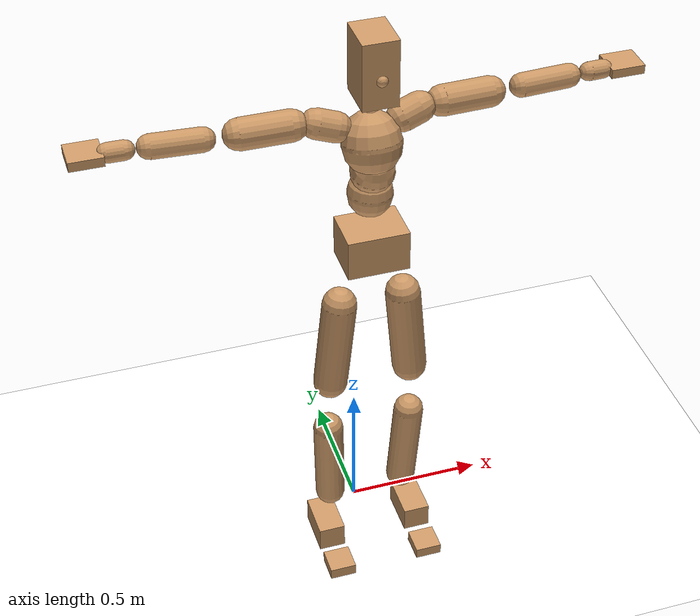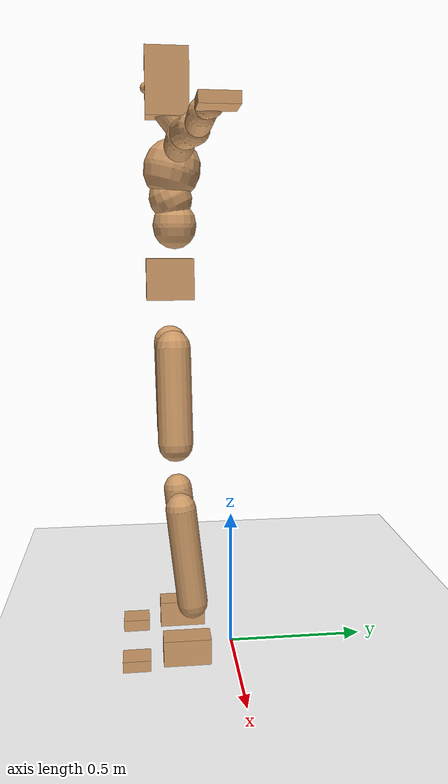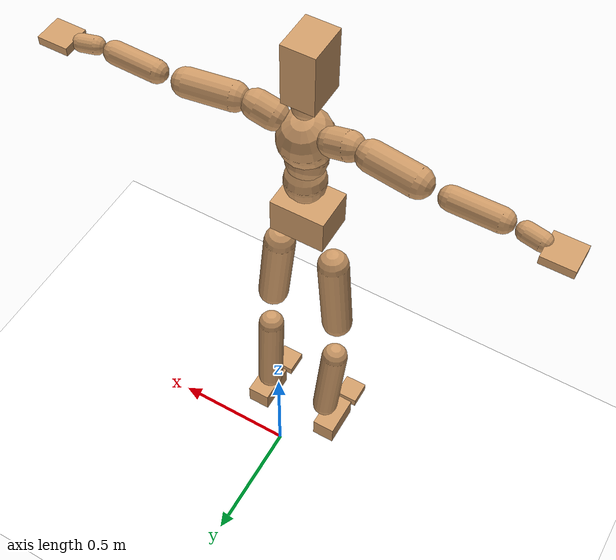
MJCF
<mujoco model="humanoid">
  <option integrator="implicitfast" />

  <visual>
    <global offwidth="1280" offheight="960" />
    <headlight active="1" ambient="0.34 0.34 0.34" diffuse="0.5 0.5 0.5" />
  </visual>

  <default>
    <joint damping="2" stiffness="2" armature="0.01" limited="true" solimplimit="0 .99 .01" />
    <geom condim="1" friction="0.7 0.005 0.0001" solimp=".99 .99 .003" solref="0.015 1" margin="0.001" rgba="0.8 0.6 .4 1" />
    <default class="smplcontact">
      <geom condim="3" friction="1. 0.005 0.0001" solref="0.015 1" solimp="0.98 0.98 0.001" priority="1" />
    </default>
    <default class="stiff_medium">
      <joint stiffness="10" />
    </default>
    <default class="stiff_medium_higher">
      <joint stiffness="50" />
    </default>
    <default class="stiff_high">
      <joint stiffness="100" />
    </default>
  </default>

  <asset>
    <texture type="skybox" builtin="gradient" rgb1="0.99 0.99 0.99" rgb2="0.608 0.828 0.892" width="100" />
    <texture builtin="flat" height="1278" mark="cross" markrgb="1 1 1" name="texgeom" random="0.01" rgb1="0.8 0.6 0.4" rgb2="0.8 0.6 0.4" type="cube" width="127" />
    <texture name="texplane" type="2d" builtin="checker" markrgb="1 1 1" rgb1="0.756 0.772 0.76" rgb2="0.6 0.6 0.6" width="100" height="100" />
    <material name="MatPlane" reflectance="0.5" texture="texplane" texrepeat="1 1" texuniform="true" />
    <material name="geom" texture="texgeom" texuniform="true" />
  </asset>

  <worldbody>
    <light name="tracking_light" pos="0 0 7" dir="0 0 -1" directional="true" cutoff="100" exponent="1" diffuse="1 1 1" specular="0.1 0.1 0.1" mode="trackcom" />
    <camera name="back" pos="0 3 2.4" xyaxes="-1 0 0 0 -1 2" mode="trackcom" />
    <camera name="side" pos="-3 0 2.4" xyaxes="0 -1 0 1 0 2" mode="trackcom" />
    <camera name="front_side" pos="-2.8 -2.8 0.8" xyaxes="0.5 -0.5 0 0.1 0.1 1" mode="trackcom" />
    <geom condim="3" name="floor" pos="0 0 0" rgba="1 1 1 1" size="100 100 .2" type="plane" material="MatPlane" />
    <body name="Pelvis" pos="-0.0018 -0.2233 1.39425" euler="90 0 0">
      <site name="Pelvis" size="0.01" />
      <freejoint name="Pelvis" />
      <geom type="box" pos="-0.0000 -0.0121 -0.0055" size="0.1069 0.0722 0.083" quat="1.0000 0.0000 0.0000 0.0000" density="3165.830099" name="Pelvis" />
      <body name="L_Hip" pos="0.10425 -0.1371 -0.0102">
        <joint name="L_Hip_x" type="hinge" pos="0 0 0" axis="1 0 0" stiffness="20.010395760869564" range="-160.0 22.92" class="stiff_medium" damping="35.828196311411354" armature="0.02851095036953482"/>
        <joint name="L_Hip_y" type="hinge" pos="0 0 0" axis="0 1 0" stiffness="19.865808913043477" range="-70.0 70.0" class="stiff_medium" damping="19.51665179855629" armature="0.01917363139318226"/>
        <joint name="L_Hip_z" type="hinge" pos="0 0 0" axis="0 0 1" stiffness="19.889777717391304" range="-28.65 90.0" class="stiff_medium" damping="23.81898353912802" armature="0.028524400066129187"/>
        <geom type="capsule" density="2040.816327" fromto="0.01035 -0.1125 -0.00135 0.0411 -0.4503 -0.0054" size="0.0615" name="L_Hip" />
        <body name="L_Knee" pos="0.05145 -0.5628 -0.00675">
          <joint name="L_Knee_x" type="hinge" pos="0 0 0" axis="1 0 0" range="-5.16 171.89" damping="17.97370958314121" armature="0.026396428561925697" stiffness="3.824549543478261"/>
          <joint name="L_Knee_y" type="hinge" pos="0 0 0" axis="0 1 0" range="-4.58 6.88" damping="14.941329779624818" armature="0.017722990590982556" stiffness="3.9363301589371975"/>
          <joint name="L_Knee_z" type="hinge" pos="0 0 0" axis="0 0 1" range="-6.88 4.58" damping="17.919426580121158" armature="0.026455159530536426" stiffness="3.7930437608695655"/>
          <geom type="capsule" density="1234.567901" fromto="-0.00405 -0.1194 -0.01305 -0.01635 -0.4776 -0.0525" size="0.0541" name="L_Knee" />
          <body name="L_Ankle" pos="-0.0204 -0.597 -0.06555">
            <joint name="L_Ankle_x" type="hinge" pos="0 0 0" axis="1 0 0" range="-45.84 45.84" class="stiff_medium" damping="9.91951079885483" armature="0.01822161009048104" stiffness="15.0"/>
            <joint name="L_Ankle_y" type="hinge" pos="0 0 0" axis="0 1 0" range="-74.48 22.92" class="stiff_medium" damping="4.917952818000753" armature="0.017915748088949295" stiffness="15.0"/>
            <joint name="L_Ankle_z" type="hinge" pos="0 0 0" axis="0 0 1" range="-4.58 4.58" class="stiff_medium" damping="9.26996898132559" armature="0.015913393502729366" stiffness="15.0"/>
            <geom type="box" pos="0.03495 -0.03585 0.0363" size="0.0483 0.0464 0.085" quat="1.0000 0.0000 0.0000 0.0000" density="449.071558" name="L_Ankle" class="smplcontact" />
            <body name="L_Toe" pos="0.0396 -0.0837 0.17895">
              <joint name="L_Toe_x" type="hinge" pos="0 0 0" axis="1 0 0" range="-91.67 22.92" armature="0.014752348892847239" damping="2.97513181820711" stiffness="3.0"/>
              <joint name="L_Toe_y" type="hinge" pos="0 0 0" axis="0 1 0" range="-4.58 4.58" armature="0.013348413454862205" damping="2.8300261611718933" stiffness="3.0"/>
              <joint name="L_Toe_z" type="hinge" pos="0 0 0" axis="0 0 1" range="-4.58 4.58" armature="0.010509731565732285" damping="2.511142954799541" stiffness="3.0"/>
              <geom type="box" pos="-0.0045 0.00825 0.0372" size="0.0478 0.02 0.0496" quat="1.0000 0.0000 0.0000 0.0000" density="423.206892" name="L_Toe" class="smplcontact" />
            </body>
          </body>
        </body>
      </body>
      <body name="R_Hip" pos="-0.10155 -0.13575 -0.00645">
        <joint name="R_Hip_x" type="hinge" pos="0 0 0" axis="1 0 0" stiffness="20.010395760869564" range="-160.0 22.92" class="stiff_medium" damping="35.828196311411354" armature="0.02851095036953482"/>
        <joint name="R_Hip_y" type="hinge" pos="0 0 0" axis="0 1 0" stiffness="19.865808913043477" range="-70.0 70.0" class="stiff_medium" damping="19.51665179855629" armature="0.01917363139318226"/>
        <joint name="R_Hip_z" type="hinge" pos="0 0 0" axis="0 0 1" stiffness="19.889777717391304" range="-90.0 28.65" class="stiff_medium" damping="23.81898353912802" armature="0.028524400066129187"/>
        <geom type="capsule" density="2040.816327" fromto="-0.01155 -0.11475 -0.0027 -0.0459 -0.45915 -0.01065" size="0.0606" name="R_Hip" />
        <body name="R_Knee" pos="-0.05745 -0.5739 -0.01335">
          <joint name="R_Knee_x" type="hinge" pos="0 0 0" axis="1 0 0" range="-5.16 171.89" damping="17.97370958314121" armature="0.026396428561925697" stiffness="3.824549543478261"/>
          <joint name="R_Knee_y" type="hinge" pos="0 0 0" axis="0 1 0" range="-6.88 4.58" damping="14.941329779624818" armature="0.017722990590982556" stiffness="3.9363301589371975"/>
          <joint name="R_Knee_z" type="hinge" pos="0 0 0" axis="0 0 1" range="-4.58 6.88" damping="17.919426580121158" armature="0.026455159530536426" stiffness="3.7930437608695655"/>
          <geom type="capsule" density="1234.567901" fromto="0.0048 -0.11955 -0.01275 0.0189 -0.47805 -0.0507" size="0.0541" name="R_Knee" />
          <body name="R_Ankle" pos="0.0237 -0.5976 -0.06345">
            <joint name="R_Ankle_x" type="hinge" pos="0 0 0" axis="1 0 0" range="-45.84 45.84" class="stiff_medium" damping="9.91951079885483" armature="0.01822161009048104" stiffness="15.0"/>
            <joint name="R_Ankle_y" type="hinge" pos="0 0 0" axis="0 1 0" range="-22.92 74.48" class="stiff_medium" damping="4.917952818000753" armature="0.017915748088949295" stiffness="15.0"/>
            <joint name="R_Ankle_z" type="hinge" pos="0 0 0" axis="0 0 1" range="-4.58 4.58" class="stiff_medium" damping="9.26996898132559" armature="0.015913393502729366" stiffness="15.0"/>
            <geom type="box" pos="-0.0318 -0.0261 0.0384" size="0.0483 0.0478 0.0865" quat="1.0000 0.0000 0.0000 0.0000" density="434.700981" name="R_Ankle" class="smplcontact" />
            <body name="R_Toe" pos="-0.0381 -0.07215 0.18495">
              <joint name="R_Toe_x" type="hinge" pos="0 0 0" axis="1 0 0" range="-91.67 22.92" armature="0.014752348892847239" damping="2.97513181820711" stiffness="3.0"/>
              <joint name="R_Toe_y" type="hinge" pos="0 0 0" axis="0 1 0" range="-4.58 4.58" armature="0.013348413454862205" damping="2.8300261611718933" stiffness="3.0"/>
              <joint name="R_Toe_z" type="hinge" pos="0 0 0" axis="0 0 1" range="-4.58 4.58" armature="0.010509731565732285" damping="2.511142954799541" stiffness="3.0"/>
              <geom type="box" pos="0.0063 0.00675 0.03405" size="0.0479 0.0216 0.0493" quat="1.0000 0.0000 0.0000 0.0000" density="407.384095" name="R_Toe" class="smplcontact" />
            </body>
          </body>
        </body>
      </body>
      <body name="Torso" pos="-0.0025 0.109 -0.0267">
        <joint name="Torso_x" type="hinge" pos="0 0 0" axis="1 0 0" range="-25.78 57.3" class="stiff_medium" damping="15.609562132888074" armature="0.01047626555893536" stiffness="10.336950217391305"/>
        <joint name="Torso_y" type="hinge" pos="0 0 0" axis="0 1 0" range="-57.3 57.3" class="stiff_high" damping="22.839756117574158" armature="0.012668353656497757" stiffness="102.94440652173913"/>
        <joint name="Torso_z" type="hinge" pos="0 0 0" axis="0 0 1" range="-34.38 34.38" class="stiff_high" damping="21.447707844805652" armature="0.011223378132891126" stiffness="102.46562272727273"/>
        <geom type="capsule" density="2040.816327" fromto="0.0025 0.0608 0.0005 0.003 0.0743 0.0006" size="0.0769" name="Torso" />
        <body name="Spine" pos="0.0055 0.1352 0.0011">
          <joint name="Spine_x" type="hinge" pos="0 0 0" axis="1 0 0" stiffness="10.396827173913044" range="-25.78 57.3" class="stiff_medium" damping="15.731663630322824" armature="0.01057951992630101"/>
          <joint name="Spine_y" type="hinge" pos="0 0 0" axis="0 1 0" stiffness="10.39561239130435" range="-57.3 57.3" class="stiff_high" damping="9.187391193291853" armature="0.012686866367473135"/>
          <joint name="Spine_z" type="hinge" pos="0 0 0" axis="0 0 1" stiffness="20.922546956521742" range="-34.38 34.38" class="stiff_high" damping="13.30232076306365" armature="0.011746481097584329"/>
          <geom type="capsule" density="2040.816327" fromto="0.0007 0.0238 0.0114 0.0008 0.0291 0.014" size="0.0755" name="Spine" />
          <body name="Chest" pos="0.0015 0.0529 0.0254">
            <joint name="Chest_x" type="hinge" pos="0 0 0" axis="1 0 0" stiffness="10.56825260869565" range="-25.78 57.3" class="stiff_medium" damping="15.90734322943941" armature="0.01064166541426727"/>
            <joint name="Chest_y" type="hinge" pos="0 0 0" axis="0 1 0" stiffness="11.12741488888889" range="-57.3 57.3" class="stiff_high" damping="9.506741501952316" armature="0.012690803368218227"/>
            <joint name="Chest_z" type="hinge" pos="0 0 0" axis="0 0 1" stiffness="20.978293478260873" range="-34.38 34.38" class="stiff_high" damping="13.450047662421923" armature="0.011976915720374792"/>
            <geom type="capsule" density="2040.816327" fromto="-0.0009 0.0682 -0.0173 -0.001 0.0833 -0.0212" size="0.1002" name="Chest" />
            <body name="Neck" pos="-0.0028 0.2139 -0.0429">
              <joint name="Neck_x" type="hinge" pos="0 0 0" axis="1 0 0" range="-28.65 57.3" class="stiff_medium_higher" damping="9.999999999999998" armature="0.009999999999999995" stiffness="50.0"/>
              <joint name="Neck_y" type="hinge" pos="0 0 0" axis="0 1 0" range="-40.11 40.11" class="stiff_medium_higher" damping="10.0" armature="0.01" stiffness="50.0"/>
              <joint name="Neck_z" type="hinge" pos="0 0 0" axis="0 0 1" range="-40.11 40.11" class="stiff_medium_higher" damping="9.999999999999995" armature="0.00999999999999999" stiffness="50.0"/>
              <geom type="capsule" density="1000" fromto="0.001 0.013 0.0103 0.0041 0.052 0.0411" size="0.0436" name="Neck" />
              <body name="Head" pos="0.0052 0.065 0.0513">
                <joint name="Head_x" type="hinge" pos="0 0 0" axis="1 0 0" range="-28.65 57.3" class="stiff_medium_higher" damping="2.0000000000000018" armature="0.010000000000000018" stiffness="50.0"/>
                <joint name="Head_y" type="hinge" pos="0 0 0" axis="0 1 0" range="-40.11 40.11" class="stiff_medium_higher" damping="1.9999999999999998" armature="0.009999999999999998" stiffness="50.0"/>
                <joint name="Head_z" type="hinge" pos="0 0 0" axis="0 0 1" range="-40.11 40.11" class="stiff_medium_higher" damping="1.9999999999999971" armature="0.00999999999999997" stiffness="50.0"/>
                <geom type="box" pos="-0.0042 0.0876 -0.0116" size="0.0606 0.1154 0.076" quat="1.0000 0.0000 0.0000 0.0000" density="1018.069894" name="Head" />
                <geom type="capsule" name="nose" size="0.02 0.01" pos="0 0.07 0.05" quat="1 0 0 0" mass="0" contype="0" conaffinity="0" />
              </body>
            </body>
            <body name="L_Thorax" pos="0.08668 0.13387 -0.03751">
              <joint name="L_Thorax_x" type="hinge" pos="0 0 0" axis="1 0 0" range="-10.89 4.58" class="stiff_medium_higher" damping="23.482950613623295" armature="0.011814903262346896" stiffness="58.342518478260864"/>
              <joint name="L_Thorax_y" type="hinge" pos="0 0 0" axis="0 1 0" range="-28.65 17.19" class="stiff_medium_higher" damping="24.43569848553297" armature="0.012759387174304944" stiffness="58.49647717391304"/>
              <joint name="L_Thorax_z" type="hinge" pos="0 0 0" axis="0 0 1" range="-31.51 40.11" class="stiff_medium_higher" damping="24.43606016093474" armature="0.012760243243334085" stiffness="58.49428423913044"/>
              <geom type="capsule" density="1000" fromto="0.02002 0.00671 -0.00198 0.08008 0.02684 -0.00781" size="0.0521" name="L_Thorax" />
              <body name="L_Shoulder" pos="0.1001 0.03355 -0.00979">
                <joint name="L_Shoulder_x" type="hinge" pos="0 0 0" axis="1 0 0" range="-97.4 97.4" class="stiff_medium" damping="6.926446117549144" armature="0.01143614113174797" stiffness="11.653031304347827"/>
                <joint name="L_Shoulder_y" type="hinge" pos="0 0 0" axis="0 1 0" range="-108.86 80.21" class="stiff_medium" damping="7.315768996607566" armature="0.012722359703116888" stiffness="11.685567173913045"/>
                <joint name="L_Shoulder_z" type="hinge" pos="0 0 0" axis="0 0 1" range="-97.4 85.94" class="stiff_medium" damping="7.3163122140641335" armature="0.012723435702067621" stiffness="11.686314239130432"/>
                <geom type="capsule" density="1000" fromto="0.05709 -0.00286 -0.00605 0.22847 -0.01122 -0.0242" size="0.0517" name="L_Shoulder" />
                <body name="L_Elbow" pos="0.28556 -0.01408 -0.03025">
                  <joint name="L_Elbow_x" type="hinge" pos="0 0 0" axis="1 0 0" range="-17.19 4.58" damping="5.601469778833565" armature="0.010847020977712672" stiffness="2.314107347826087"/>
                  <joint name="L_Elbow_y" type="hinge" pos="0 0 0" axis="0 1 0" range="-180.0 17.19" damping="6.0237732190835915" armature="0.012542680731684373" stiffness="2.3143916086956517"/>
                  <joint name="L_Elbow_z" type="hinge" pos="0 0 0" axis="0 0 1" range="-100.84 4.58" damping="6.024430570097211" armature="0.012548321640758909" stiffness="2.3138561304347824"/>
                  <geom type="capsule" density="1000" fromto="0.05478 0.00198 -0.00022 0.21934 0.00792 -0.00099" size="0.0405" name="L_Elbow" />
                  <body name="L_Wrist" pos="0.27412 0.0099 -0.00132">
                    <joint name="L_Wrist_x" type="hinge" pos="0 0 0" axis="1 0 0" range="-180.0 22.92" armature="0.010707540477697577" damping="2.189843893132341" stiffness="2.2392706739130435"/>
                    <joint name="L_Wrist_y" type="hinge" pos="0 0 0" axis="0 1 0" range="-17.19 17.19" armature="0.011962634992803456" damping="2.318024362113696" stiffness="2.245841717391304"/>
                    <joint name="L_Wrist_z" type="hinge" pos="0 0 0" axis="0 0 1" range="-22.92 22.92" armature="0.012031856829646154" damping="2.323401667429803" stiffness="2.243292695652174"/>
                    <geom type="capsule" density="1000" fromto="0.01848 -0.00176 -0.0033 0.07392 -0.00715 -0.0132" size="0.0318" name="L_Wrist" class="smplcontact" />
                    <body name="L_Hand" pos="0.0924 -0.00902 -0.01639">
                      <joint name="L_Hand_x" type="hinge" pos="0 0 0" axis="1 0 0" range="-17.19 17.19" armature="0.010091488937092897" damping="2.1071912899214618" stiffness="2.2"/>
                      <joint name="L_Hand_y" type="hinge" pos="0 0 0" axis="0 1 0" range="-51.57 51.57" armature="0.011106432471592325" damping="2.210617625800677" stiffness="2.2"/>
                      <joint name="L_Hand_z" type="hinge" pos="0 0 0" axis="0 0 1" range="-91.67 91.67" armature="0.011376979537969319" damping="2.2373803871283267" stiffness="2.2"/>
                      <geom type="box" pos="0.05423 0.0011 -0.00638" size="0.0585 0.0158 0.0538" quat="1.0000 0.0000 0.0000 0.0000" density="400.552564" name="L_Hand" class="smplcontact" />
                    </body>
                  </body>
                </body>
              </body>
            </body>
            <body name="R_Thorax" pos="-0.08998 0.13068 -0.04246">
              <joint name="R_Thorax_x" type="hinge" pos="0 0 0" axis="1 0 0" range="-10.89 4.58" class="stiff_medium_higher" damping="23.482950613623295" armature="0.011814903262346896" stiffness="58.342518478260864"/>
              <joint name="R_Thorax_y" type="hinge" pos="0 0 0" axis="0 1 0" range="-17.19 28.65" class="stiff_medium_higher" damping="24.43569848553297" armature="0.012759387174304944" stiffness="58.49647717391304"/>
              <joint name="R_Thorax_z" type="hinge" pos="0 0 0" axis="0 0 1" range="-40.11 31.51" class="stiff_medium_higher" damping="24.43606016093474" armature="0.012760243243334085" stiffness="58.49428423913044"/>
              <geom type="capsule" density="1000" fromto="-0.02112 0.00715 -0.00198 -0.08448 0.0286 -0.00803" size="0.0511" name="R_Thorax" />
              <body name="R_Shoulder" pos="-0.1056 0.03586 -0.01001">
                <joint name="R_Shoulder_x" type="hinge" pos="0 0 0" axis="1 0 0" range="-97.4 97.4" class="stiff_medium" damping="6.926446117549144" armature="0.01143614113174797" stiffness="11.653031304347827"/>
                <joint name="R_Shoulder_y" type="hinge" pos="0 0 0" axis="0 1 0" range="-80.21 108.86" class="stiff_medium" damping="7.315768996607566" armature="0.012722359703116888" stiffness="11.685567173913045"/>
                <joint name="R_Shoulder_z" type="hinge" pos="0 0 0" axis="0 0 1" range="-85.94 97.4" class="stiff_medium" damping="7.3163122140641335" armature="0.012723435702067621" stiffness="11.686314239130432"/>
                <geom type="capsule" density="1000" fromto="-0.05577 -0.00297 -0.00473 -0.2233 -0.01177 -0.01881" size="0.0531" name="R_Shoulder" />
                <body name="R_Elbow" pos="-0.27907 -0.01463 -0.02354">
                  <joint name="R_Elbow_x" type="hinge" pos="0 0 0" axis="1 0 0" range="-17.19 4.58" damping="5.601469778833565" armature="0.010847020977712672" stiffness="2.314107347826087"/>
                  <joint name="R_Elbow_y" type="hinge" pos="0 0 0" axis="0 1 0" range="-17.19 180.0" damping="6.0237732190835915" armature="0.012542680731684373" stiffness="2.3143916086956517"/>
                  <joint name="R_Elbow_z" type="hinge" pos="0 0 0" axis="0 0 1" range="-4.58 100.84" damping="6.024430570097211" armature="0.012548321640758909" stiffness="2.3138561304347824"/>
                  <geom type="capsule" density="1000" fromto="-0.05621 0.00176 -0.00121 -0.22462 0.00682 -0.00484" size="0.0408" name="R_Elbow" />
                  <body name="R_Wrist" pos="-0.28083 0.00858 -0.00616">
                    <joint name="R_Wrist_x" type="hinge" pos="0 0 0" axis="1 0 0" range="-180.0 22.92" armature="0.010707540477697577" damping="2.189843893132341" stiffness="2.2392706739130435"/>
                    <joint name="R_Wrist_y" type="hinge" pos="0 0 0" axis="0 1 0" range="-17.19 17.19" armature="0.011962634992803456" damping="2.318024362113696" stiffness="2.245841717391304"/>
                    <joint name="R_Wrist_z" type="hinge" pos="0 0 0" axis="0 0 1" range="-22.92 22.92" armature="0.012031856829646154" damping="2.323401667429803" stiffness="2.243292695652174"/>
                    <geom type="capsule" density="1000" fromto="-0.01859 -0.00132 -0.00231 -0.07447 -0.00539 -0.00913" size="0.0326" name="R_Wrist" class="smplcontact" />
                    <body name="R_Hand" pos="-0.09306 -0.00671 -0.01133">
                      <joint name="R_Hand_x" type="hinge" pos="0 0 0" axis="1 0 0" range="-17.19 17.19" armature="0.010091488937092897" damping="2.1071912899214618" stiffness="2.2"/>
                      <joint name="R_Hand_y" type="hinge" pos="0 0 0" axis="0 1 0" range="-51.57 51.57" armature="0.011106432471592325" damping="2.210617625800677" stiffness="2.2"/>
                      <joint name="R_Hand_z" type="hinge" pos="0 0 0" axis="0 0 1" range="-91.67 91.67" armature="0.011376979537969319" damping="2.2373803871283267" stiffness="2.2"/>
                      <geom type="box" pos="-0.05082 -0.00099 -0.00869" size="0.0569 0.0164 0.0546" quat="1.0000 0.0000 0.0000 0.0000" density="403.679611" name="R_Hand" class="smplcontact" />
                    </body>
                  </body>
                </body>
              </body>
            </body>
          </body>
        </body>
      </body>
    </body>
  </worldbody>
  <actuator>
    <general name="L_Hip_x" joint="L_Hip_x" biastype="affine" gainprm="574.9588296583441" biasprm="-430.87336742601036 -360.18712369565213 -4.7770928415215135" ctrllimited="true" ctrlrange="-1 1" forcerange="-720.3742473913043 720.3742473913043" />
    <general name="L_Hip_y" joint="L_Hip_y" biastype="affine" gainprm="436.8719553718521" biasprm="0.0 -357.5845604347826 -3.9033303597112576" ctrllimited="true" ctrlrange="-1 1" forcerange="-715.1691208695652 715.1691208695652" />
    <general name="L_Hip_z" joint="L_Hip_z" biastype="affine" gainprm="370.6957007307449" biasprm="191.67451529566958 -358.0159989130435 -4.763796707825604" ctrllimited="true" ctrlrange="-1 1" forcerange="-716.031997826087 716.031997826087" />
    <general name="L_Knee_x" joint="L_Knee_x" biastype="affine" gainprm="531.82176085622" biasprm="500.82260484358966 -344.2094589130435 -4.493427395785303" ctrllimited="true" ctrlrange="-1 1" forcerange="-688.418917826087 688.418917826087" />
    <general name="L_Knee_y" joint="L_Knee_y" biastype="affine" gainprm="35.429581030491285" biasprm="7.110648897917099 -354.26971430434776 -3.7353324449062044" ctrllimited="true" ctrlrange="-1 1" forcerange="-708.5394286086955 708.5394286086955" />
    <general name="L_Knee_z" joint="L_Knee_z" biastype="affine" gainprm="34.1399084558018" biasprm="-6.851814087988146 -341.3739384782609 -4.4798566450302895" ctrllimited="true" ctrlrange="-1 1" forcerange="-682.7478769565218 682.7478769565218" />
    <general name="L_Ankle_x" joint="L_Ankle_x" biastype="affine" gainprm="108.0079554304171" biasprm="0.0 -135.0 -3.306503599618277" ctrllimited="true" ctrlrange="-1 1" forcerange="-270.0 270.0" />
    <general name="L_Ankle_y" joint="L_Ankle_y" biastype="affine" gainprm="114.74667167236721" biasprm="-60.742693957158664 -135.0 -3.278635212000502" ctrllimited="true" ctrlrange="-1 1" forcerange="-270.0 270.0" />
    <general name="L_Ankle_z" joint="L_Ankle_z" biastype="affine" gainprm="10.791370765080938" biasprm="0.0 -135.0 -3.089989660441863" ctrllimited="true" ctrlrange="-1 1" forcerange="-270.0 270.0" />
    <general name="L_Toe_x" joint="L_Toe_x" biastype="affine" gainprm="107.99853065245631" biasprm="-64.79534848028948 -108.0 -1.190052727282844" ctrllimited="true" ctrlrange="-1 1" forcerange="-216.0 216.0" />
    <general name="L_Toe_y" joint="L_Toe_y" biastype="affine" gainprm="8.633096612064751" biasprm="0.0 -108.0 -1.1320104644687574" ctrllimited="true" ctrlrange="-1 1" forcerange="-216.0 216.0" />
    <general name="L_Toe_z" joint="L_Toe_z" biastype="affine" gainprm="8.633096612064751" biasprm="0.0 -108.0 -1.0044571819198165" ctrllimited="true" ctrlrange="-1 1" forcerange="-216.0 216.0" />
    <general name="R_Hip_x" joint="R_Hip_x" biastype="affine" gainprm="574.9588296583441" biasprm="-430.87336742601036 -360.18712369565213 -4.7770928415215135" ctrllimited="true" ctrlrange="-1 1" forcerange="-720.3742473913043 720.3742473913043" />
    <general name="R_Hip_y" joint="R_Hip_y" biastype="affine" gainprm="436.8719553718521" biasprm="0.0 -357.5845604347826 -3.9033303597112576" ctrllimited="true" ctrlrange="-1 1" forcerange="-715.1691208695652 715.1691208695652" />
    <general name="R_Hip_z" joint="R_Hip_z" biastype="affine" gainprm="370.6957007307449" biasprm="-191.67451529566958 -358.0159989130435 -4.763796707825604" ctrllimited="true" ctrlrange="-1 1" forcerange="-716.031997826087 716.031997826087" />
    <general name="R_Knee_x" joint="R_Knee_x" biastype="affine" gainprm="531.82176085622" biasprm="500.82260484358966 -344.2094589130435 -4.493427395785303" ctrllimited="true" ctrlrange="-1 1" forcerange="-688.418917826087 688.418917826087" />
    <general name="R_Knee_y" joint="R_Knee_y" biastype="affine" gainprm="35.429581030491285" biasprm="-7.110648897917099 -354.26971430434776 -3.7353324449062044" ctrllimited="true" ctrlrange="-1 1" forcerange="-708.5394286086955 708.5394286086955" />
    <general name="R_Knee_z" joint="R_Knee_z" biastype="affine" gainprm="34.1399084558018" biasprm="6.851814087988146 -341.3739384782609 -4.4798566450302895" ctrllimited="true" ctrlrange="-1 1" forcerange="-682.7478769565218 682.7478769565218" />
    <general name="R_Ankle_x" joint="R_Ankle_x" biastype="affine" gainprm="108.0079554304171" biasprm="0.0 -135.0 -3.306503599618277" ctrllimited="true" ctrlrange="-1 1" forcerange="-270.0 270.0" />
    <general name="R_Ankle_y" joint="R_Ankle_y" biastype="affine" gainprm="114.74667167236721" biasprm="60.742693957158664 -135.0 -3.278635212000502" ctrllimited="true" ctrlrange="-1 1" forcerange="-270.0 270.0" />
    <general name="R_Ankle_z" joint="R_Ankle_z" biastype="affine" gainprm="10.791370765080938" biasprm="0.0 -135.0 -3.089989660441863" ctrllimited="true" ctrlrange="-1 1" forcerange="-270.0 270.0" />
    <general name="R_Toe_x" joint="R_Toe_x" biastype="affine" gainprm="107.99853065245631" biasprm="-64.79534848028948 -108.0 -1.190052727282844" ctrllimited="true" ctrlrange="-1 1" forcerange="-216.0 216.0" />
    <general name="R_Toe_y" joint="R_Toe_y" biastype="affine" gainprm="8.633096612064751" biasprm="0.0 -108.0 -1.1320104644687574" ctrllimited="true" ctrlrange="-1 1" forcerange="-216.0 216.0" />
    <general name="R_Toe_z" joint="R_Toe_z" biastype="affine" gainprm="8.633096612064751" biasprm="0.0 -108.0 -1.0044571819198165" ctrllimited="true" ctrlrange="-1 1" forcerange="-216.0 216.0" />
    <general name="Torso_x" joint="Torso_x" biastype="affine" gainprm="179.8653579078609" biasprm="68.23972172912583 -248.08680521739132 -4.162549902103486" ctrllimited="true" ctrlrange="-1 1" forcerange="-372.130207826087 372.130207826087" />
    <general name="Torso_y" joint="Torso_y" biastype="affine" gainprm="247.0847749202386" biasprm="0.0 -247.06657565217392 -4.567951223514831" ctrllimited="true" ctrlrange="-1 1" forcerange="-370.5998634782609 370.5998634782609" />
    <general name="Torso_z" joint="Torso_z" biastype="affine" gainprm="147.56136550236278" biasprm="0.0 -245.91749454545456 -4.2895415689611305" ctrllimited="true" ctrlrange="-1 1" forcerange="-368.8762418181818 368.8762418181818" />
    <general name="Spine_x" joint="Spine_x" biastype="affine" gainprm="180.9072309931251" biasprm="68.63500145526362 -249.52385217391304 -4.19511030141942" ctrllimited="true" ctrlrange="-1 1" forcerange="-374.28577826086956 374.28577826086956" />
    <general name="Spine_y" joint="Spine_y" biastype="affine" gainprm="249.51307551819818" biasprm="0.0 -249.49469739130438 -4.593695596645927" ctrllimited="true" ctrlrange="-1 1" forcerange="-374.2420460869566 374.2420460869566" />
    <general name="Spine_z" joint="Spine_z" biastype="affine" gainprm="150.6534346113873" biasprm="0.0 -251.0705634782609 -4.4341069210212165" ctrllimited="true" ctrlrange="-1 1" forcerange="-376.60584521739133 376.60584521739133" />
    <general name="Chest_x" joint="Chest_x" biastype="affine" gainprm="183.89007375943817" biasprm="69.76667218220378 -253.63806260869558 -4.241958194517176" ctrllimited="true" ctrlrange="-1 1" forcerange="-380.45709391304337 380.45709391304337" />
    <general name="Chest_y" joint="Chest_y" biastype="affine" gainprm="267.0776291944157" biasprm="0.0 -267.0579573333333 -4.753370750976158" ctrllimited="true" ctrlrange="-1 1" forcerange="-400.586936 400.586936" />
    <general name="Chest_z" joint="Chest_z" biastype="affine" gainprm="151.05483913374735" biasprm="0.0 -251.73952173913048 -4.483349220807308" ctrllimited="true" ctrlrange="-1 1" forcerange="-377.60928260869576 377.60928260869576" />
    <general name="Neck_x" joint="Neck_x" biastype="affine" gainprm="27.00198885760427" biasprm="9.000662952534757 -36.0 -0.7999999999999998" ctrllimited="true" ctrlrange="-1 1" forcerange="-72.0 72.0" />
    <general name="Neck_y" joint="Neck_y" biastype="affine" gainprm="25.20185626709732" biasprm="0.0 -36.0 -0.8" ctrllimited="true" ctrlrange="-1 1" forcerange="-72.0 72.0" />
    <general name="Neck_z" joint="Neck_z" biastype="affine" gainprm="25.20185626709732" biasprm="0.0 -36.0 -0.7999999999999996" ctrllimited="true" ctrlrange="-1 1" forcerange="-72.0 72.0" />
    <general name="Head_x" joint="Head_x" biastype="affine" gainprm="18.001325905069514" biasprm="6.000441968356505 -24.0 -0.8000000000000007" ctrllimited="true" ctrlrange="-1 1" forcerange="-48.0 48.0" />
    <general name="Head_y" joint="Head_y" biastype="affine" gainprm="16.801237511398213" biasprm="0.0 -24.0 -0.7999999999999999" ctrllimited="true" ctrlrange="-1 1" forcerange="-48.0 48.0" />
    <general name="Head_z" joint="Head_z" biastype="affine" gainprm="16.801237511398213" biasprm="0.0 -24.0 -0.7999999999999989" ctrllimited="true" ctrlrange="-1 1" forcerange="-48.0 48.0" />
    <general name="L_Thorax_x" joint="L_Thorax_x" biastype="affine" gainprm="18.90314648364523" biasprm="-7.710333181111923 -140.02204434782607 -1.878636049089864" ctrllimited="true" ctrlrange="-1 1" forcerange="-280.04408869565214 280.04408869565214" />
    <general name="L_Thorax_y" joint="L_Thorax_y" biastype="affine" gainprm="56.16075466165698" biasprm="-14.040188665414245 -140.3915452173913 -1.9548558788426378" ctrllimited="true" ctrlrange="-1 1" forcerange="-280.7830904347826 280.7830904347826" />
    <general name="L_Thorax_z" joint="L_Thorax_z" biastype="affine" gainprm="87.74176400724176" biasprm="10.535872248845001 -140.38628217391303 -1.9548848128747793" ctrllimited="true" ctrlrange="-1 1" forcerange="-280.77256434782606 280.77256434782606" />
    <general name="L_Shoulder_x" joint="L_Shoulder_x" biastype="affine" gainprm="95.08597739148922" biasprm="0.0 -55.93455026086957 -1.8470522980131052" ctrllimited="true" ctrlrange="-1 1" forcerange="-111.86910052173914 111.86910052173914" />
    <general name="L_Shoulder_y" joint="L_Shoulder_y" biastype="affine" gainprm="92.54671967874089" biasprm="-14.02371353887939 -56.09072243478262 -1.9508717324286842" ctrllimited="true" ctrlrange="-1 1" forcerange="-112.18144486956524 112.18144486956524" />
    <general name="L_Shoulder_z" joint="L_Shoulder_z" biastype="affine" gainprm="89.74771422860401" biasprm="-5.609844033270449 -56.09430834782608 -1.9510165904171022" ctrllimited="true" ctrlrange="-1 1" forcerange="-112.18861669565216 112.18861669565216" />
    <general name="L_Elbow_x" joint="L_Elbow_x" biastype="affine" gainprm="15.82675221500529" biasprm="-9.167448113514782 -83.30786452173913 -0.8962351646133704" ctrllimited="true" ctrlrange="-1 1" forcerange="-166.61572904347827 166.61572904347827" />
    <general name="L_Elbow_y" joint="L_Elbow_y" biastype="affine" gainprm="143.37439744337277" biasprm="-118.37712687131966 -83.31809791304346 -0.9638037150533747" ctrllimited="true" ctrlrange="-1 1" forcerange="-166.63619582608692 166.63619582608692" />
    <general name="L_Elbow_z" joint="L_Elbow_z" biastype="affine" gainprm="76.63183704247017" biasprm="-69.97325586898292 -83.29882069565217 -0.9639088912155538" ctrllimited="true" ctrlrange="-1 1" forcerange="-166.59764139130434 166.59764139130434" />
    <general name="L_Wrist_x" joint="L_Wrist_x" biastype="affine" gainprm="23.791951641744404" biasprm="-18.41730614964129 -13.43562404347826 -0.8759375572529365" ctrllimited="true" ctrlrange="-1 1" forcerange="-26.87124808695652 26.87124808695652" />
    <general name="L_Wrist_y" joint="L_Wrist_y" biastype="affine" gainprm="4.04281286859619" biasprm="0.0 -13.475050304347825 -0.9272097448454784" ctrllimited="true" ctrlrange="-1 1" forcerange="-26.95010060869565 26.95010060869565" />
    <general name="L_Wrist_z" joint="L_Wrist_z" biastype="affine" gainprm="5.384299055319561" biasprm="0.0 -13.459756173913043 -0.9293606669719212" ctrllimited="true" ctrlrange="-1 1" forcerange="-26.919512347826085 26.919512347826085" />
    <general name="L_Hand_x" joint="L_Hand_x" biastype="affine" gainprm="3.9602916991152943" biasprm="0.0 -13.200000000000001 -0.8428765159685847" ctrllimited="true" ctrlrange="-1 1" forcerange="-26.400000000000002 26.400000000000002" />
    <general name="L_Hand_y" joint="L_Hand_y" biastype="affine" gainprm="11.88087509734588" biasprm="0.0 -13.200000000000001 -0.8842470503202708" ctrllimited="true" ctrlrange="-1 1" forcerange="-26.400000000000002 26.400000000000002" />
    <general name="L_Hand_z" joint="L_Hand_z" biastype="affine" gainprm="21.119251894002264" biasprm="0.0 -13.200000000000001 -0.8949521548513307" ctrllimited="true" ctrlrange="-1 1" forcerange="-26.400000000000002 26.400000000000002" />
    <general name="R_Thorax_x" joint="R_Thorax_x" biastype="affine" gainprm="18.90314648364523" biasprm="-7.710333181111923 -140.02204434782607 -1.878636049089864" ctrllimited="true" ctrlrange="-1 1" forcerange="-280.04408869565214 280.04408869565214" />
    <general name="R_Thorax_y" joint="R_Thorax_y" biastype="affine" gainprm="56.16075466165698" biasprm="14.040188665414236 -140.3915452173913 -1.9548558788426378" ctrllimited="true" ctrlrange="-1 1" forcerange="-280.7830904347826 280.7830904347826" />
    <general name="R_Thorax_z" joint="R_Thorax_z" biastype="affine" gainprm="87.74176400724176" biasprm="-10.535872248845001 -140.38628217391303 -1.9548848128747793" ctrllimited="true" ctrlrange="-1 1" forcerange="-280.77256434782606 280.77256434782606" />
    <general name="R_Shoulder_x" joint="R_Shoulder_x" biastype="affine" gainprm="95.08597739148922" biasprm="0.0 -55.93455026086957 -1.8470522980131052" ctrllimited="true" ctrlrange="-1 1" forcerange="-111.86910052173914 111.86910052173914" />
    <general name="R_Shoulder_y" joint="R_Shoulder_y" biastype="affine" gainprm="92.54671967874089" biasprm="14.02371353887939 -56.09072243478262 -1.9508717324286842" ctrllimited="true" ctrlrange="-1 1" forcerange="-112.18144486956524 112.18144486956524" />
    <general name="R_Shoulder_z" joint="R_Shoulder_z" biastype="affine" gainprm="89.74771422860401" biasprm="5.609844033270437 -56.09430834782608 -1.9510165904171022" ctrllimited="true" ctrlrange="-1 1" forcerange="-112.18861669565216 112.18861669565216" />
    <general name="R_Elbow_x" joint="R_Elbow_x" biastype="affine" gainprm="15.82675221500529" biasprm="-9.167448113514782 -83.30786452173913 -0.8962351646133704" ctrllimited="true" ctrlrange="-1 1" forcerange="-166.61572904347827 166.61572904347827" />
    <general name="R_Elbow_y" joint="R_Elbow_y" biastype="affine" gainprm="143.37439744337277" biasprm="118.37712687131966 -83.31809791304346 -0.9638037150533747" ctrllimited="true" ctrlrange="-1 1" forcerange="-166.63619582608692 166.63619582608692" />
    <general name="R_Elbow_z" joint="R_Elbow_z" biastype="affine" gainprm="76.63183704247017" biasprm="69.97325586898292 -83.29882069565217 -0.9639088912155538" ctrllimited="true" ctrlrange="-1 1" forcerange="-166.59764139130434 166.59764139130434" />
    <general name="R_Wrist_x" joint="R_Wrist_x" biastype="affine" gainprm="23.791951641744404" biasprm="-18.41730614964129 -13.43562404347826 -0.8759375572529365" ctrllimited="true" ctrlrange="-1 1" forcerange="-26.87124808695652 26.87124808695652" />
    <general name="R_Wrist_y" joint="R_Wrist_y" biastype="affine" gainprm="4.04281286859619" biasprm="0.0 -13.475050304347825 -0.9272097448454784" ctrllimited="true" ctrlrange="-1 1" forcerange="-26.95010060869565 26.95010060869565" />
    <general name="R_Wrist_z" joint="R_Wrist_z" biastype="affine" gainprm="5.384299055319561" biasprm="0.0 -13.459756173913043 -0.9293606669719212" ctrllimited="true" ctrlrange="-1 1" forcerange="-26.919512347826085 26.919512347826085" />
    <general name="R_Hand_x" joint="R_Hand_x" biastype="affine" gainprm="3.9602916991152943" biasprm="0.0 -13.200000000000001 -0.8428765159685847" ctrllimited="true" ctrlrange="-1 1" forcerange="-26.400000000000002 26.400000000000002" />
    <general name="R_Hand_y" joint="R_Hand_y" biastype="affine" gainprm="11.88087509734588" biasprm="0.0 -13.200000000000001 -0.8842470503202708" ctrllimited="true" ctrlrange="-1 1" forcerange="-26.400000000000002 26.400000000000002" />
    <general name="R_Hand_z" joint="R_Hand_z" biastype="affine" gainprm="21.119251894002264" biasprm="0.0 -13.200000000000001 -0.8949521548513307" ctrllimited="true" ctrlrange="-1 1" forcerange="-26.400000000000002 26.400000000000002" />
  </actuator>
  <contact>
    <exclude body1="Torso" body2="Chest" />
    <exclude body1="Head" body2="Chest" />
    <exclude body1="R_Knee" body2="R_Toe" />
    <exclude body1="R_Knee" body2="L_Ankle" />
    <exclude body1="R_Knee" body2="L_Toe" />
    <exclude body1="L_Knee" body2="L_Toe" />
    <exclude body1="L_Knee" body2="R_Ankle" />
    <exclude body1="L_Knee" body2="R_Toe" />
    <exclude body1="L_Shoulder" body2="Chest" />
    <exclude body1="R_Shoulder" body2="Chest" />
  </contact>
  <sensor>
    <framelinvel name="sensor_Pelvis_framelinvel" objtype="xbody" objname="Pelvis" />
    <framelinvel name="sensor_L_Hip_framelinvel" objtype="xbody" objname="L_Hip" />
    <framelinvel name="sensor_L_Knee_framelinvel" objtype="xbody" objname="L_Knee" />
    <framelinvel name="sensor_L_Ankle_framelinvel" objtype="xbody" objname="L_Ankle" />
    <framelinvel name="sensor_L_Toe_framelinvel" objtype="xbody" objname="L_Toe" />
    <framelinvel name="sensor_R_Hip_framelinvel" objtype="xbody" objname="R_Hip" />
    <framelinvel name="sensor_R_Knee_framelinvel" objtype="xbody" objname="R_Knee" />
    <framelinvel name="sensor_R_Ankle_framelinvel" objtype="xbody" objname="R_Ankle" />
    <framelinvel name="sensor_R_Toe_framelinvel" objtype="xbody" objname="R_Toe" />
    <framelinvel name="sensor_Torso_framelinvel" objtype="xbody" objname="Torso" />
    <framelinvel name="sensor_Spine_framelinvel" objtype="xbody" objname="Spine" />
    <framelinvel name="sensor_Chest_framelinvel" objtype="xbody" objname="Chest" />
    <framelinvel name="sensor_Neck_framelinvel" objtype="xbody" objname="Neck" />
    <framelinvel name="sensor_Head_framelinvel" objtype="xbody" objname="Head" />
    <framelinvel name="sensor_L_Thorax_framelinvel" objtype="xbody" objname="L_Thorax" />
    <framelinvel name="sensor_L_Shoulder_framelinvel" objtype="xbody" objname="L_Shoulder" />
    <framelinvel name="sensor_L_Elbow_framelinvel" objtype="xbody" objname="L_Elbow" />
    <framelinvel name="sensor_L_Wrist_framelinvel" objtype="xbody" objname="L_Wrist" />
    <framelinvel name="sensor_L_Hand_framelinvel" objtype="xbody" objname="L_Hand" />
    <framelinvel name="sensor_R_Thorax_framelinvel" objtype="xbody" objname="R_Thorax" />
    <framelinvel name="sensor_R_Shoulder_framelinvel" objtype="xbody" objname="R_Shoulder" />
    <framelinvel name="sensor_R_Elbow_framelinvel" objtype="xbody" objname="R_Elbow" />
    <framelinvel name="sensor_R_Wrist_framelinvel" objtype="xbody" objname="R_Wrist" />
    <framelinvel name="sensor_R_Hand_framelinvel" objtype="xbody" objname="R_Hand" />
    <frameangvel name="sensor_Pelvis_frameangvel" objtype="xbody" objname="Pelvis" />
    <frameangvel name="sensor_L_Hip_frameangvel" objtype="xbody" objname="L_Hip" />
    <frameangvel name="sensor_L_Knee_frameangvel" objtype="xbody" objname="L_Knee" />
    <frameangvel name="sensor_L_Ankle_frameangvel" objtype="xbody" objname="L_Ankle" />
    <frameangvel name="sensor_L_Toe_frameangvel" objtype="xbody" objname="L_Toe" />
    <frameangvel name="sensor_R_Hip_frameangvel" objtype="xbody" objname="R_Hip" />
    <frameangvel name="sensor_R_Knee_frameangvel" objtype="xbody" objname="R_Knee" />
    <frameangvel name="sensor_R_Ankle_frameangvel" objtype="xbody" objname="R_Ankle" />
    <frameangvel name="sensor_R_Toe_frameangvel" objtype="xbody" objname="R_Toe" />
    <frameangvel name="sensor_Torso_frameangvel" objtype="xbody" objname="Torso" />
    <frameangvel name="sensor_Spine_frameangvel" objtype="xbody" objname="Spine" />
    <frameangvel name="sensor_Chest_frameangvel" objtype="xbody" objname="Chest" />
    <frameangvel name="sensor_Neck_frameangvel" objtype="xbody" objname="Neck" />
    <frameangvel name="sensor_Head_frameangvel" objtype="xbody" objname="Head" />
    <frameangvel name="sensor_L_Thorax_frameangvel" objtype="xbody" objname="L_Thorax" />
    <frameangvel name="sensor_L_Shoulder_frameangvel" objtype="xbody" objname="L_Shoulder" />
    <frameangvel name="sensor_L_Elbow_frameangvel" objtype="xbody" objname="L_Elbow" />
    <frameangvel name="sensor_L_Wrist_frameangvel" objtype="xbody" objname="L_Wrist" />
    <frameangvel name="sensor_L_Hand_frameangvel" objtype="xbody" objname="L_Hand" />
    <frameangvel name="sensor_R_Thorax_frameangvel" objtype="xbody" objname="R_Thorax" />
    <frameangvel name="sensor_R_Shoulder_frameangvel" objtype="xbody" objname="R_Shoulder" />
    <frameangvel name="sensor_R_Elbow_frameangvel" objtype="xbody" objname="R_Elbow" />
    <frameangvel name="sensor_R_Wrist_frameangvel" objtype="xbody" objname="R_Wrist" />
    <frameangvel name="sensor_R_Hand_frameangvel" objtype="xbody" objname="R_Hand" />
    <subtreelinvel name="Chest_subtreelinvel" body="Chest" />
    <gyro name="Pelvis_gyro" site="Pelvis" />
  </sensor>
</mujoco>
